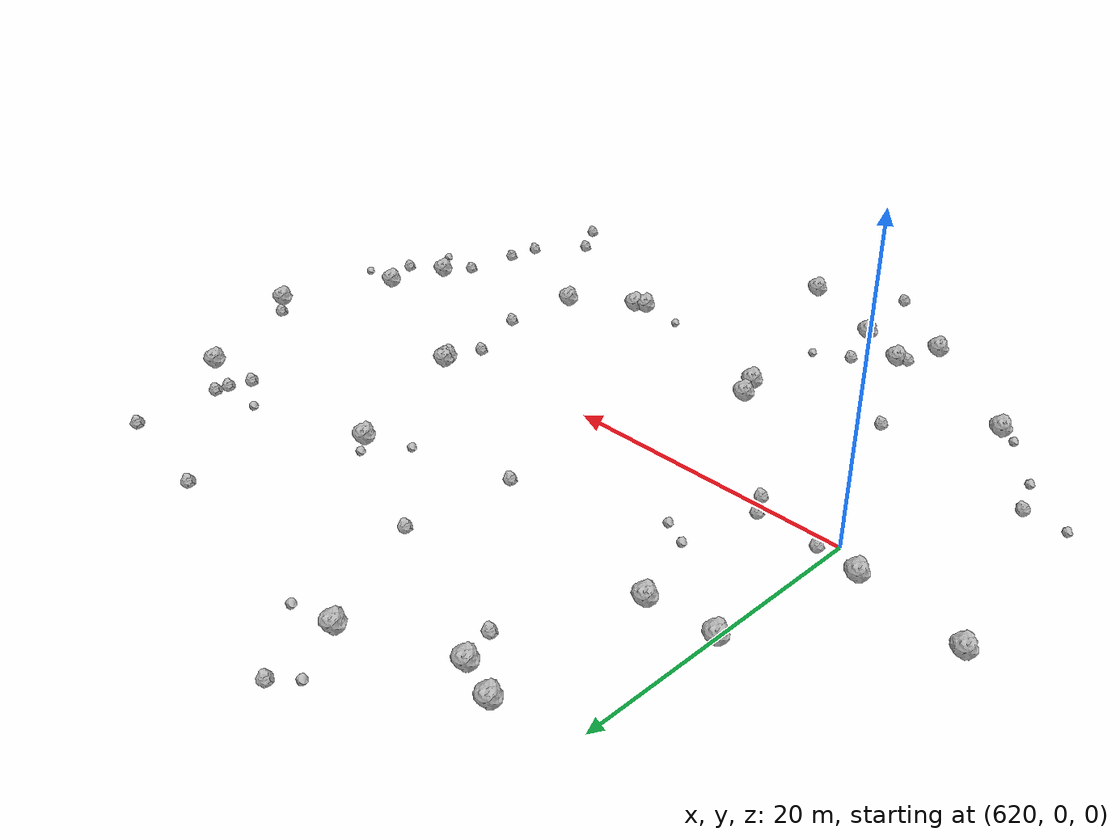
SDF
<sdf version="1.6">
 <world name="default">
  <include><uri>model://sun</uri></include>
  <model name="rock1_16_3">
   <include><uri>model://rock1</uri><pose>647.8213726283948 -14.386997735026165 0.5 0 0 0</pose></include>
  </model>
  <model name="rock1_16_4">
   <include><uri>model://rock1</uri><pose>668.1384988176002 4.423137472087404 0.5 0 0 0</pose></include>
  </model>
  <model name="rock1_16_5">
   <include><uri>model://rock1</uri><pose>634.2798666959308 -9.282155641659916 0.5 0 0 0</pose></include>
  </model>
  <model name="rock1_16_6">
   <include><uri>model://rock1</uri><pose>629.8197455078778 -20.67946710139549 0.5 0 0 0</pose></include>
  </model>
  <model name="rock1_16_7">
   <include><uri>model://rock1</uri><pose>663.0435289252931 13.372967325411402 0.5 0 0 0</pose></include>
  </model>
  <model name="rock1_16_8">
   <include><uri>model://rock1</uri><pose>647.6724627725259 11.960828774811787 0.5 0 0 0</pose></include>
  </model>
  <model name="rock1_16_9">
   <include><uri>model://rock1</uri><pose>619.9702269888704 -17.362396093669716 0.5 0 0 0</pose></include>
  </model>
  <model name="rock1_16_10">
   <include><uri>model://rock1</uri><pose>652.7136904403513 -11.072639905860207 0.5 0 0 0</pose></include>
  </model>
  <model name="rock1_16_11">
   <include><uri>model://rock1</uri><pose>652.0324446732851 1.5873200497115114 0.5 0 0 0</pose></include>
  </model>
  <model name="rock1_16_12">
   <include><uri>model://rock1</uri><pose>620.0833810039801 10.717461639907505 0.5 0 0 0</pose></include>
  </model>
  <model name="rock1_16_13">
   <include><uri>model://rock1</uri><pose>634.2662326444228 23.87833254698733 0.5 0 0 0</pose></include>
  </model>
  <model name="rock1_16_14">
   <include><uri>model://rock1</uri><pose>627.4800292662653 20.871155755433563 0.5 0 0 0</pose></include>
  </model>
  <model name="rock1_16_15">
   <include><uri>model://rock1</uri><pose>640.3580125947453 -26.017014719254448 0.5 0 0 0</pose></include>
  </model>
  <model name="rock1_16_16">
   <include><uri>model://rock1</uri><pose>634.9584005212043 -11.031937478231356 0.5 0 0 0</pose></include>
  </model>
  <model name="rock1_16_17">
   <include><uri>model://rock1</uri><pose>648.5422258982334 -13.981272308343339 0.5 0 0 0</pose></include>
  </model>
  <model name="rock1_16_18">
   <include><uri>model://rock1</uri><pose>628.4939928100307 -23.97100536410349 0.5 0 0 0</pose></include>
  </model>
  <model name="rock1_16_19">
   <include><uri>model://rock1</uri><pose>624.7668533831927 21.77124384548089 0.5 0 0 0</pose></include>
  </model>
  <model name="rock1_16_20">
   <include><uri>model://rock1</uri><pose>617.9800983583237 1.4844048572166741 0.5 0 0 0</pose></include>
  </model>
  <model name="rock1_16_21">
   <include><uri>model://rock1</uri><pose>651.9481212198291 1.889933559243481 0.5 0 0 0</pose></include>
  </model>
  <model name="rock1_16_22">
   <include><uri>model://rock1</uri><pose>664.8687185006029 -3.4962017290510197 0.5 0 0 0</pose></include>
  </model>
  <model name="rock1_16_23">
   <include><uri>model://rock1</uri><pose>610.819677951075 2.7799110161900344 0.5 0 0 0</pose></include>
  </model>
  <model name="rock1_16_24">
   <include><uri>model://rock1</uri><pose>624.6075009804593 11.03811906988949 0.5 0 0 0</pose></include>
  </model>
  <model name="rock1_16_25">
   <include><uri>model://rock1</uri><pose>663.5205919112547 -7.645744243263216 0.5 0 0 0</pose></include>
  </model>
  <model name="rock1_16_26">
   <include><uri>model://rock1</uri><pose>633.5119103191618 -22.666653953887558 0.5 0 0 0</pose></include>
  </model>
  <model name="rock2_16_0">
   <include><uri>model://rock2</uri><pose>614.5767808522211 -10.173116653890318 0.3 0 0 0</pose></include>
  </model>
  <model name="rock2_16_1">
   <include><uri>model://rock2</uri><pose>661.6221386225398 -13.377733440953783 0.3 0 0 0</pose></include>
  </model>
  <model name="rock2_16_2">
   <include><uri>model://rock2</uri><pose>628.2282749830447 18.604120336375964 0.3 0 0 0</pose></include>
  </model>
  <model name="rock2_16_3">
   <include><uri>model://rock2</uri><pose>662.1082407913566 -9.455060813029405 0.3 0 0 0</pose></include>
  </model>
  <model name="rock2_16_4">
   <include><uri>model://rock2</uri><pose>651.1100788672495 -0.883557821222535 0.3 0 0 0</pose></include>
  </model>
  <model name="rock2_16_5">
   <include><uri>model://rock2</uri><pose>659.112823025265 21.344003692387034 0.3 0 0 0</pose></include>
  </model>
  <model name="rock2_16_6">
   <include><uri>model://rock2</uri><pose>652.9857444848151 -5.532725514631171 0.3 0 0 0</pose></include>
  </model>
  <model name="rock2_16_7">
   <include><uri>model://rock2</uri><pose>620.8594889580058 1.0663699178918726 0.3 0 0 0</pose></include>
  </model>
  <model name="rock2_16_8">
   <include><uri>model://rock2</uri><pose>625.9721724218609 -0.5482797448059209 0.3 0 0 0</pose></include>
  </model>
  <model name="rock2_16_9">
   <include><uri>model://rock2</uri><pose>658.7131641102318 13.111123468613876 0.3 0 0 0</pose></include>
  </model>
  <model name="rock2_16_10">
   <include><uri>model://rock2</uri><pose>625.5910052613161 -12.421063444485554 0.3 0 0 0</pose></include>
  </model>
  <model name="rock2_16_11">
   <include><uri>model://rock2</uri><pose>638.2163958760902 16.115395255926245 0.3 0 0 0</pose></include>
  </model>
  <model name="rock2_16_12">
   <include><uri>model://rock2</uri><pose>663.6125728631778 -7.968663185309804 0.3 0 0 0</pose></include>
  </model>
  <model name="rock2_16_13">
   <include><uri>model://rock2</uri><pose>661.2870515061219 -15.663089845482268 0.3 0 0 0</pose></include>
  </model>
  <model name="rock2_16_14">
   <include><uri>model://rock2</uri><pose>625.1367428630512 0.8984420559615884 0.3 0 0 0</pose></include>
  </model>
  <model name="rock2_16_15">
   <include><uri>model://rock2</uri><pose>660.438528795114 -21.64284004091656 0.3 0 0 0</pose></include>
  </model>
  <model name="rock2_16_16">
   <include><uri>model://rock2</uri><pose>634.3939742318018 -28.94923205244465 0.3 0 0 0</pose></include>
  </model>
  <model name="rock2_16_17">
   <include><uri>model://rock2</uri><pose>632.0617649008312 -18.516142051127794 0.3 0 0 0</pose></include>
  </model>
  <model name="rock2_16_18">
   <include><uri>model://rock2</uri><pose>658.6899861434225 -19.006022512579033 0.3 0 0 0</pose></include>
  </model>
  <model name="rock2_16_19">
   <include><uri>model://rock2</uri><pose>629.0487654699 -20.96357206001373 0.3 0 0 0</pose></include>
  </model>
  <model name="rock2_16_20">
   <include><uri>model://rock2</uri><pose>659.3119224713142 15.545930226240152 0.3 0 0 0</pose></include>
  </model>
  <model name="rock2_16_21">
   <include><uri>model://rock2</uri><pose>666.2530880831222 5.728266863386146 0.3 0 0 0</pose></include>
  </model>
  <model name="rock2_16_22">
   <include><uri>model://rock2</uri><pose>650.869465721671 22.48208767146307 0.3 0 0 0</pose></include>
  </model>
  <model name="rock2_16_23">
   <include><uri>model://rock2</uri><pose>659.1942787406387 14.61782702435837 0.3 0 0 0</pose></include>
  </model>
  <model name="rock2_16_24">
   <include><uri>model://rock2</uri><pose>637.5928899169197 8.679607961220007 0.3 0 0 0</pose></include>
  </model>
  <model name="rock2_16_25">
   <include><uri>model://rock2</uri><pose>633.2080020432775 28.568860315575193 0.3 0 0 0</pose></include>
  </model>
  <model name="rock2_16_26">
   <include><uri>model://rock2</uri><pose>665.8586837830984 -6.160104166486185 0.3 0 0 0</pose></include>
  </model>
  <model name="rock3_16_0">
   <include><uri>model://rock3</uri><pose>655.8227766443358 14.760936639697974 0.2 0 0 0</pose></include>
  </model>
  <model name="rock3_16_1">
   <include><uri>model://rock3</uri><pose>634.4344054960618 -17.34543941516602 0.2 0 0 0</pose></include>
  </model>
  <model name="rock3_16_2">
   <include><uri>model://rock3</uri><pose>665.1443912183363 -9.662981933496436 0.2 0 0 0</pose></include>
  </model>
  <model name="rock3_16_3">
   <include><uri>model://rock3</uri><pose>644.3050920028853 -13.930563264152806 0.2 0 0 0</pose></include>
  </model>
  <model name="rock3_16_4">
   <include><uri>model://rock3</uri><pose>611.7504451308836 -10.090934899530993 0.2 0 0 0</pose></include>
  </model>
  <model name="rock3_16_5">
   <include><uri>model://rock3</uri><pose>628.1037276731951 5.143074696768032 0.2 0 0 0</pose></include>
  </model>
  <model name="rock3_16_6">
   <include><uri>model://rock3</uri><pose>637.1291778979164 24.40523159442501 0.2 0 0 0</pose></include>
  </model>
  <model name="rock3_16_7">
   <include><uri>model://rock3</uri><pose>631.9771218083717 27.241798798435042 0.2 0 0 0</pose></include>
  </model>
  <model name="rock3_16_8">
   <include><uri>model://rock3</uri><pose>667.4975354573029 -3.5287897613439547 0.2 0 0 0</pose></include>
  </model>
  <model name="rock3_16_9">
   <include><uri>model://rock3</uri><pose>646.4591118609994 13.058141094857632 0.2 0 0 0</pose></include>
  </model>
  <model name="rock3_16_10">
   <include><uri>model://rock3</uri><pose>626.3547726196207 5.999873156093983 0.2 0 0 0</pose></include>
  </model>
  <model name="rock3_16_11">
   <include><uri>model://rock3</uri><pose>644.5464816616596 10.542913871155179 0.2 0 0 0</pose></include>
  </model>
  <model name="rock3_16_12">
   <include><uri>model://rock3</uri><pose>615.5667798006799 -13.01059387432445 0.2 0 0 0</pose></include>
  </model>
  <model name="rock3_16_13">
   <include><uri>model://rock3</uri><pose>618.5903293186362 -16.656566461558945 0.2 0 0 0</pose></include>
  </model>
 </world>
</sdf>
